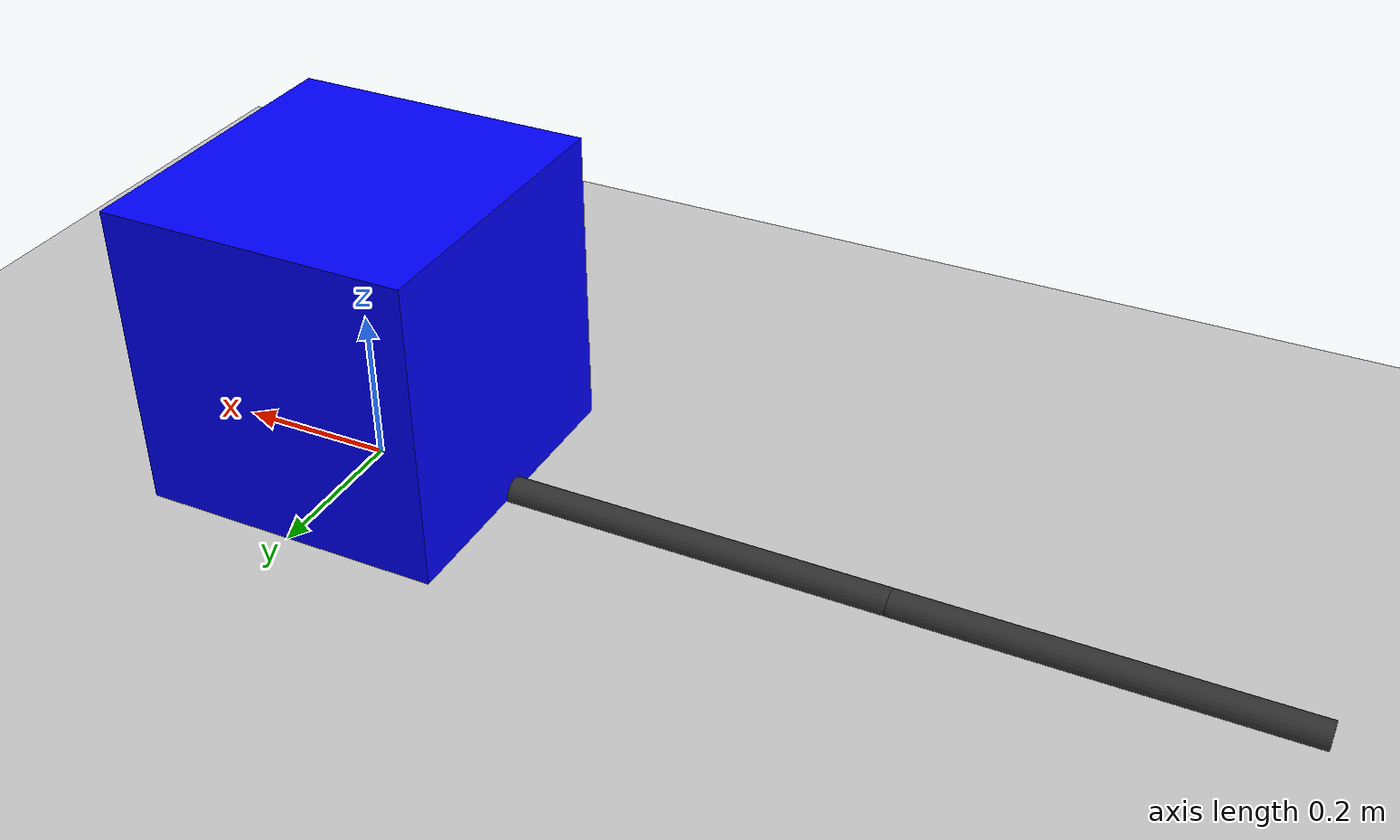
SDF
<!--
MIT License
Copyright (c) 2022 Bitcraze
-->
<sdf version="1.6">
 <world name="crazyflie_world">
  <physics name="1ms" type="ignored">
   <max_step_size>0.001</max_step_size>
   <real_time_factor>1.0</real_time_factor>
  </physics>
  <plugin filename="gz-sim-physics-system" name="gz::sim::systems::Physics"/>
  <plugin filename="gz-sim-user-commands-system" name="gz::sim::systems::UserCommands"/>
  <plugin filename="gz-sim-scene-broadcaster-system" name="gz::sim::systems::SceneBroadcaster"/>
  <plugin filename="gz-sim-sensors-system" name="gz::sim::systems::Sensors">
   <render_engine>ogre2</render_engine>
  </plugin>
  <light type="directional" name="sun">
   <pose>0 0 10 0 0 0</pose>
   <diffuse>0.8 0.8 0.8 1</diffuse>
   <specular>0.2 0.2 0.2 1</specular>
   <attenuation>
    <range>1000</range>
    <constant>0.9</constant>
    <linear>0.01</linear>
    <quadratic>0.001</quadratic>
   </attenuation>
   <direction>-0.5 0.1 -0.9</direction>
  </light>
  <model name="ground_plane">
   <static>true</static>
   <link name="link">
    <collision name="collision">
     <geometry><plane><normal>0 0 1</normal><size>100 100</size></plane></geometry>
    </collision>
    <visual name="visual">
     <geometry><plane><normal>0 0 1</normal><size>100 100</size></plane></geometry>
     <material>
      <ambient>0.8 0.8 0.8 1</ambient>
      <diffuse>0.8 0.8 0.8 1</diffuse>
      <specular>0.8 0.8 0.8 1</specular>
     </material>
    </visual>
   </link>
  </model>
  <include><uri>model://load</uri><name>the_load</name></include>
  <include><uri>model://segment</uri><name>segment_01</name><pose>-0.95 0 0 0 0 0</pose></include>
  <joint name="drone_to_cable_01" type="revolute">
   <pose relative_to="crazyflie_01::hook_link">0 0 0 0 0 0</pose>
   <parent>crazyflie_01::hook_link</parent>
   <child>segment_01::segment_link</child>
   <axis><xyz>0 1 0</xyz></axis>
  </joint>
  <include><uri>model://segment</uri><name>segment_10</name><pose>-0.45 0 0 0 0 0</pose></include>
  <joint name="segment_09_to_10" type="revolute">
   <pose relative_to="segment_01::segment_end">0 0 0 0 0 0</pose>
   <parent>segment_01::segment_end</parent>
   <child>segment_10::segment_link</child>
   <axis><xyz>0 1 0</xyz></axis>
  </joint>
  <joint name="cable_10_to_load" type="revolute">
   <pose relative_to="segment_10::segment_end">0 0 0 0 0 0</pose>
   <parent>segment_10::segment_end</parent>
   <child>the_load::top_center_hook</child>
   <axis><xyz>0 1 0</xyz></axis>
  </joint>
  <plugin filename="gz-sim-odometry-publisher-system" name="gz::sim::systems::OdometryPublisher">
   <dimensions>3</dimensions>
  </plugin>
 </world>
</sdf>

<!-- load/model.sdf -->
<sdf version="1.8">
<model name="load">
  <link name="box_body">
    <pose>0 0 0.2 0 0 0</pose>
      <inertial> <!--inertial properties of the link mass, inertia matix-->
        <mass>0.0001</mass>
        <inertia>
          <ixx>0.00000266</ixx>
          <ixy>0</ixy>
          <ixz>0</ixz>
          <iyy>0.00000266</iyy>
          <iyz>0</iyz>
          <izz>0.00000266</izz>
        </inertia>
      </inertial>
      <visual name='visual'>
        <geometry>
          <box>
            <size>0.4 0.4 0.4</size>
          </box>
        </geometry>
          <!--let's add color to our link-->
          <material>
            <ambient>0.0 0.0 1.0 1</ambient>
            <diffuse>0.0 0.0 1.0 1</diffuse>
            <specular>0.0 0.0 1.0 1</specular>
          </material>
      </visual>
      <collision name='collision'>
        <geometry>
          <box>
            <size>0.4 0.4 0.4</size>
          </box>
        </geometry>
      </collision>
    </link>
  <link name="top_center_hook">
    <pose>0 0 0.2 0 0 0</pose>
    <inertial>
      <mass>0.00001</mass>
        <inertia>
          <ixx>1e-9</ixx>
          <ixy>0</ixy>
          <ixz>0</ixz>
          <iyy>1e-9</iyy>
          <iyz>0</iyz>
          <izz>1e-9</izz>
        </inertia>
    </inertial>
    <visual name="hook_visual"><geometry><sphere><radius>0.005</radius></sphere></geometry></visual>
    <collision name="hook_collision"><geometry><sphere><radius>0.005</radius></sphere></geometry></collision>
  </link>
  <joint name="box_to_hook_joint" type="fixed">
    <parent>top_center_hook</parent>
    <child>box_body</child>
  </joint>

  <plugin
      filename="gz-sim-odometry-publisher-system"
      name="gz::sim::systems::OdometryPublisher">
      <odom_frame>odom</odom_frame>
      <dimensions>3</dimensions>
    </plugin>
</model>
</sdf>

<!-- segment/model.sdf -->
<sdf version="1.8">
  <model name="segment">
    <link name="segment_link">
      <inertial>
        <mass>0.00001</mass>
        <pose>0 0 0 0 1.5708 0</pose>
        <inertia>
            <ixx>1e-9</ixx>
            <iyy>1e-9</iyy>
            <izz>1e-9</izz>
        </inertia>
      </inertial>
      <visual name="segment_visual">
        <pose>0 0 0 0 1.5708 0</pose>
        <geometry>
          <cylinder>
            <radius>0.02</radius>
            <length>0.5</length> </cylinder>
        </geometry>
        <material>
          <ambient>0.2 0.2 0.2 1</ambient>
          <diffuse>0.2 0.2 0.2 1</diffuse>
          <specular>0.0 0.0 0.0 1</specular>
          <emissive>0.0 0.0 0.0 1</emissive>
        </material>
      </visual>
      <collision name="segment_collision">
        <pose>0 0 0 0 1.5708 0</pose>
        <geometry>
          <cylinder>
            <radius>0.02</radius>
            <length>0.5</length>
          </cylinder>
        </geometry>
      </collision>
    </link>
    <link name="segment_end">
        <pose>0.25 0 0 0 0 0</pose>
        <inertial>
          <mass>1e-9</mass>
          <inertia>
            <ixx>1e-9</ixx>
            <iyy>1e-9</iyy>
            <izz>1e-9</izz>
        </inertia>
        </inertial>
        <visual name="end_visual"><geometry><sphere><radius>0.001</radius></sphere></geometry></visual>
        <collision name="end_collision"><geometry><sphere><radius>0.001</radius></sphere></geometry></collision>
    </link>
    <joint name="end_joint" type="fixed">
        <parent>segment_link</parent>
        <child>segment_end</child>
    </joint>
  </model>
</sdf>
